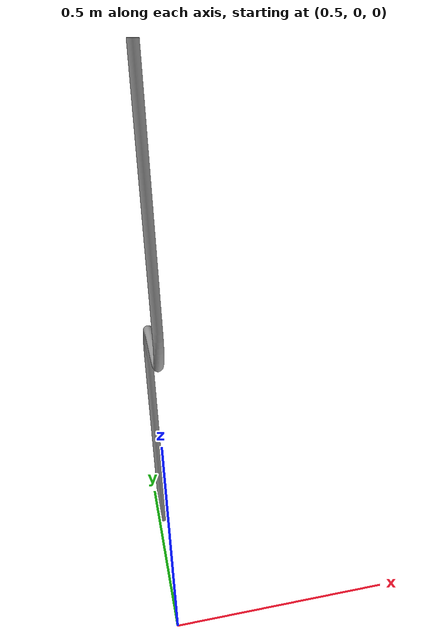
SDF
<sdf version="1.6">
 <world name="default">
  <light name="sun" type="directional">
   <pose>0 0 10 0 -0 0</pose>
   <diffuse>0.8 0.8 0.8 1</diffuse>
   <specular>0.1 0.1 0.1 1</specular>
   <attenuation>
    <range>1000</range>
    <constant>0.9</constant>
    <linear>0.01</linear>
    <quadratic>0.001</quadratic>
   </attenuation>
   <direction>-0.5 0.5 -1</direction>
  </light>
  <model name="pipe">
   <pose>0.5 0 0 1.570796327 0 1.570796327</pose>
   <static>1</static>
   <link name="link">
    <collision name="collision">
     <geometry>
      <mesh><scale>1 1 1</scale><uri>model://kuka_experimental/kuka_kr10_gazebo/meshes/pipe.dae</uri></mesh>
     </geometry>
     <surface><friction><ode><mu>100</mu><mu2>50</mu2></ode></friction></surface>
    </collision>
    <visual name="visual">
     <cast_shadows>0</cast_shadows>
     <geometry>
      <mesh><scale>1 1 1</scale><uri>model://kuka_experimental/kuka_kr10_gazebo/meshes/pipe.dae</uri></mesh>
     </geometry>
     <material>
      <script><uri>file://media/materials/scripts/gazebo.material</uri><name>Gazebo/Grey</name></script>
     </material>
    </visual>
    <self_collide>1</self_collide>
    <gravity>0</gravity>
   </link>
  </model>
  <gravity>0 0 -9.8</gravity>
  <magnetic_field>6e-06 2.3e-05 -4.2e-05</magnetic_field>
  <atmosphere type="adiabatic"/>
  <physics name="default_physics" default="0" type="ode">
   <max_step_size>0.001</max_step_size>
   <real_time_factor>1</real_time_factor>
   <real_time_update_rate>1000</real_time_update_rate>
  </physics>
  <scene><ambient>0.4 0.4 0.4 1</ambient><background>0.7 0.7 0.7 1</background><shadows>1</shadows></scene>
  <spherical_coordinates>
   <surface_model>EARTH_WGS84</surface_model>
   <latitude_deg>0</latitude_deg>
   <longitude_deg>0</longitude_deg>
   <elevation>0</elevation>
   <heading_deg>0</heading_deg>
  </spherical_coordinates>
 </world>
</sdf>
